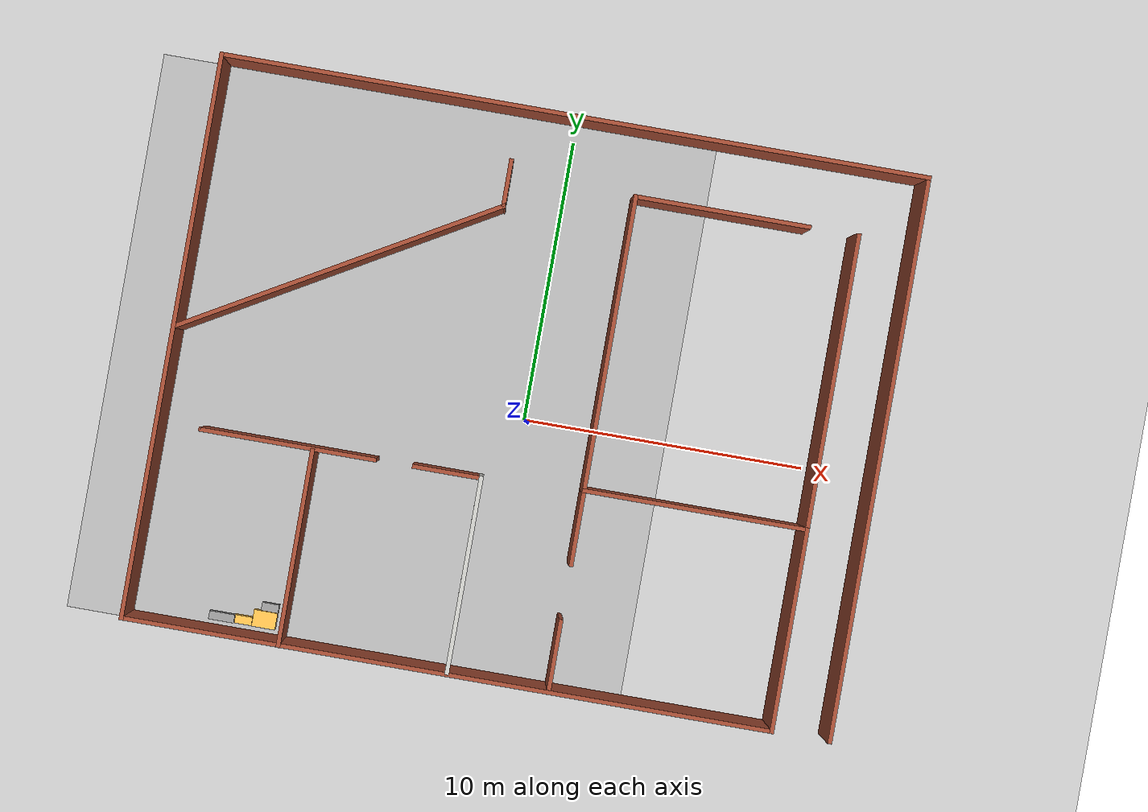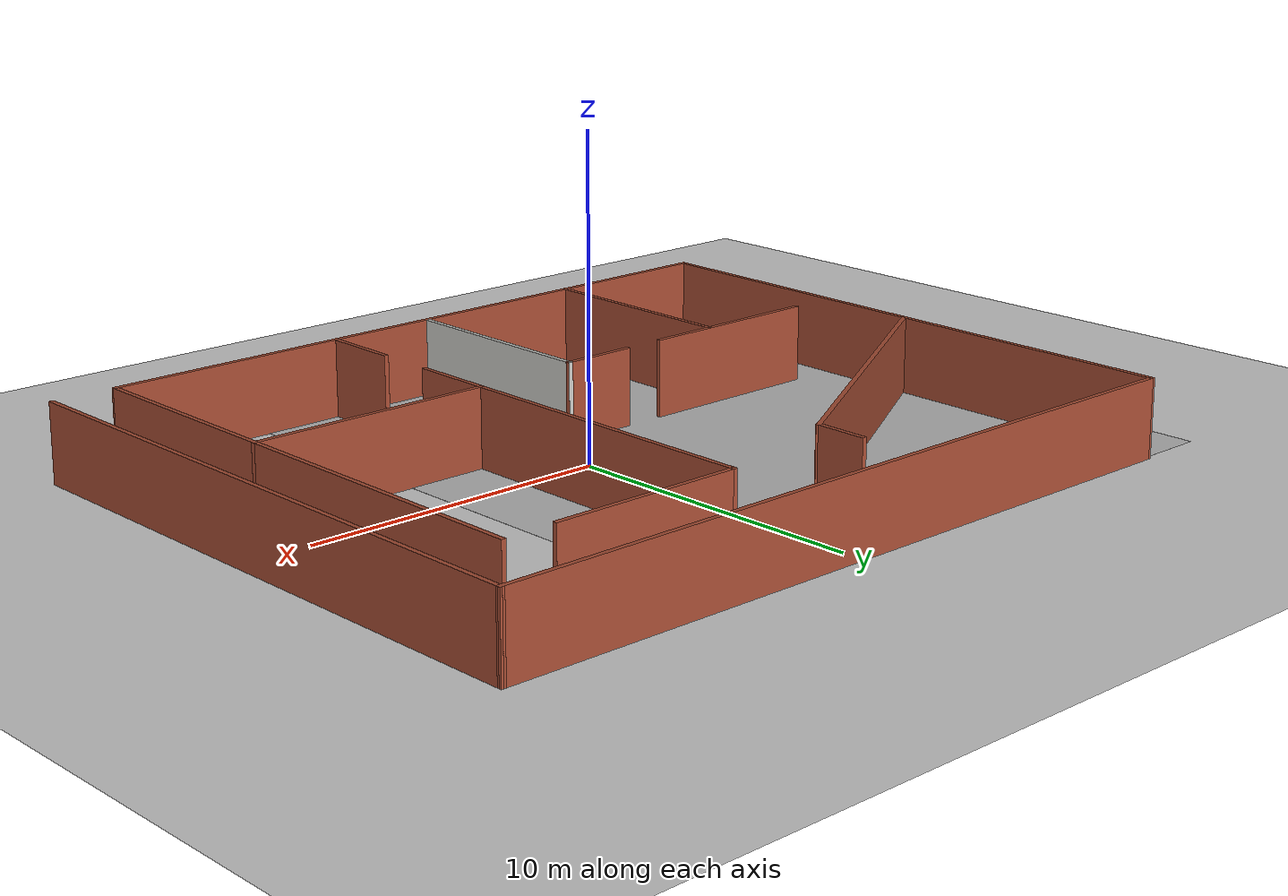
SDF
<sdf version="1.6">
 <world name="default">
  <model name="ground_plane">
   <static>1</static>
   <link name="link">
    <collision name="collision">
     <geometry><plane><normal>0 0 1</normal><size>100 100</size></plane></geometry>
     <surface><friction><ode><mu>100</mu><mu2>50</mu2></ode></friction></surface>
    </collision>
    <visual name="visual">
     <cast_shadows>0</cast_shadows>
     <geometry><plane><normal>0 0 1</normal><size>100 100</size></plane></geometry>
     <material>
      <script><uri>file://media/materials/scripts/gazebo.material</uri><name>Gazebo/Grey</name></script>
     </material>
    </visual>
   </link>
  </model>
  <model name="assignment_world">
   <pose>-0.160271 0.770481 0 0 -0 0</pose>
   <link name="Wall_11">
    <collision name="Wall_11_Collision">
     <geometry><box><size>7.25 0.15 2.5</size></box></geometry>
     <pose>0 0 1.25 0 -0 0</pose>
    </collision>
    <visual name="Wall_11_Visual">
     <pose>0 0 1.25 0 -0 0</pose>
     <geometry><box><size>7.25 0.15 2.5</size></box></geometry>
     <material>
      <script><uri>file://media/materials/scripts/gazebo.material</uri><name>Gazebo/Bricks</name></script>
      <ambient>1 1 1 1</ambient>
     </material>
     <meta><layer>0</layer></meta>
    </visual>
    <pose>10.422 -6.36383 0 0 -0 1.5708</pose>
   </link>
   <link name="Wall_12">
    <collision name="Wall_12_Collision">
     <geometry><box><size>8 0.15 2.5</size></box></geometry>
     <pose>0 0 1.25 0 -0 0</pose>
    </collision>
    <visual name="Wall_12_Visual">
     <pose>0 0 1.25 0 -0 0</pose>
     <geometry><box><size>8 0.15 2.5</size></box></geometry>
     <material>
      <script><uri>file://media/materials/scripts/gazebo.material</uri><name>Gazebo/Bricks</name></script>
      <ambient>1 1 1 1</ambient>
     </material>
     <meta><layer>0</layer></meta>
    </visual>
    <pose>6.49702 -2.81383 0 0 -0 3.14159</pose>
   </link>
   <link name="Wall_13">
    <collision name="Wall_13_Collision">
     <geometry><box><size>2.75 0.15 2.5</size></box></geometry>
     <pose>0 0 1.25 0 -0 0</pose>
    </collision>
    <visual name="Wall_13_Visual">
     <pose>0 0 1.25 0 -0 0</pose>
     <geometry><box><size>2.75 0.15 2.5</size></box></geometry>
     <material>
      <script><uri>file://media/materials/scripts/gazebo.material</uri><name>Gazebo/Bricks</name></script>
      <ambient>1 1 1 1</ambient>
     </material>
     <meta><layer>0</layer></meta>
    </visual>
    <pose>2.57202 -4.11383 0 0 -0 -1.5708</pose>
   </link>
   <link name="Wall_15">
    <collision name="Wall_15_Collision">
     <geometry><box><size>2.5 0.15 2.5</size></box></geometry>
     <pose>0 0 1.25 0 -0 0</pose>
    </collision>
    <visual name="Wall_15_Visual">
     <pose>0 0 1.25 0 -0 0</pose>
     <geometry><box><size>2.5 0.15 2.5</size></box></geometry>
     <material>
      <script><uri>file://media/materials/scripts/gazebo.material</uri><name>Gazebo/Bricks</name></script>
      <ambient>1 1 1 1</ambient>
     </material>
     <meta><layer>0</layer></meta>
    </visual>
    <pose>2.56055 -8.598 0 0 -0 -1.5708</pose>
   </link>
   <link name="Wall_17">
    <collision name="Wall_17_Collision">
     <geometry><box><size>10.5 0.15 2.5</size></box></geometry>
     <pose>0 0 1.25 0 -0 0</pose>
    </collision>
    <visual name="Wall_17_Visual">
     <pose>0 0 1.25 0 -0 0</pose>
     <geometry><box><size>10.5 0.15 2.5</size></box></geometry>
     <material>
      <script><uri>file://media/materials/scripts/gazebo.material</uri><name>Gazebo/Bricks</name></script>
      <ambient>1 1 1 1</ambient>
     </material>
     <meta><layer>0</layer></meta>
    </visual>
    <pose>10.422 2.36117 0 0 -0 1.5708</pose>
   </link>
   <link name="Wall_2">
    <collision name="Wall_2_Collision">
     <geometry><box><size>20.0001 0.15 2.5</size></box></geometry>
     <pose>0 0 1.25 0 -0 0</pose>
    </collision>
    <visual name="Wall_2_Visual">
     <pose>0 0 1.25 0 -0 0</pose>
     <geometry><box><size>20.0001 0.15 2.5</size></box></geometry>
     <material>
      <script><uri>file://media/materials/scripts/gazebo.material</uri><name>Gazebo/Bricks</name></script>
      <ambient>1 1 1 1</ambient>
     </material>
     <meta><layer>0</layer></meta>
    </visual>
    <pose>-12.4452 -0.009056 0 0 -0 -1.57314</pose>
   </link>
   <link name="Wall_24">
    <collision name="Wall_24_Collision">
     <geometry><box><size>10.5 0.15 2.5</size></box></geometry>
     <pose>0 0 1.25 0 -0 0</pose>
    </collision>
    <visual name="Wall_24_Visual">
     <pose>0 0 1.25 0 -0 0</pose>
     <geometry><box><size>10.5 0.15 2.5</size></box></geometry>
     <material>
      <script><uri>file://media/materials/scripts/gazebo.material</uri><name>Gazebo/Bricks</name></script>
      <ambient>1 1 1 1</ambient>
     </material>
     <meta><layer>0</layer></meta>
    </visual>
    <pose>2.57202 2.36117 0 0 -0 -1.5708</pose>
   </link>
   <link name="Wall_26">
    <collision name="Wall_26_Collision">
     <geometry><box><size>6.25 0.15 2.5</size></box></geometry>
     <pose>0 0 1.25 0 -0 0</pose>
    </collision>
    <visual name="Wall_26_Visual">
     <pose>0 0 1.25 0 -0 0</pose>
     <geometry><box><size>6.25 0.15 2.5</size></box></geometry>
     <material>
      <script><uri>file://media/materials/scripts/gazebo.material</uri><name>Gazebo/Bricks</name></script>
      <ambient>1 1 1 1</ambient>
     </material>
     <meta><layer>0</layer></meta>
    </visual>
    <pose>5.62202 7.53617 0 0 -0 0</pose>
   </link>
   <link name="Wall_33">
    <collision name="Wall_33_Collision">
     <geometry><box><size>12.25 0.15 2.5</size></box></geometry>
     <pose>0 0 1.25 0 -0 0</pose>
    </collision>
    <visual name="Wall_33_Visual">
     <pose>0 0 1.25 0 -0 0</pose>
     <geometry><box><size>12.25 0.15 2.5</size></box></geometry>
     <material>
      <script><uri>file://media/materials/scripts/gazebo.material</uri><name>Gazebo/Bricks</name></script>
      <ambient>1 1 1 1</ambient>
     </material>
     <meta><layer>0</layer></meta>
    </visual>
    <pose>-7.13474 3.38922 0 0 -0 0.523599</pose>
   </link>
   <link name="Wall_34">
    <collision name="Wall_34_Collision">
     <geometry><box><size>1.75 0.15 2.5</size></box></geometry>
     <pose>0 0 1.25 0 -0 0</pose>
    </collision>
    <visual name="Wall_34_Visual">
     <pose>0 0 1.25 0 -0 0</pose>
     <geometry><box><size>1.75 0.15 2.5</size></box></geometry>
     <material>
      <script><uri>file://media/materials/scripts/gazebo.material</uri><name>Gazebo/Bricks</name></script>
      <ambient>1 1 1 1</ambient>
     </material>
     <meta><layer>0</layer></meta>
    </visual>
    <pose>-1.89529 7.21422 0 0 -0 1.5708</pose>
   </link>
   <link name="Wall_4">
    <collision name="Wall_4_Collision">
     <geometry><box><size>25.0202 0.15 2.5</size></box></geometry>
     <pose>0 0 1.25 0 -0 0</pose>
    </collision>
    <visual name="Wall_4_Visual">
     <pose>0 0 1.25 0 -0 0</pose>
     <geometry><box><size>25.0202 0.15 2.5</size></box></geometry>
     <material>
      <script><uri>file://media/materials/scripts/gazebo.material</uri><name>Gazebo/Bricks</name></script>
      <ambient>1 1 1 1</ambient>
     </material>
     <meta><layer>0</layer></meta>
    </visual>
    <pose>0.033433 9.92606 0 0 -0 0.000813</pose>
   </link>
   <link name="Wall_42">
    <collision name="Wall_42_Collision">
     <geometry><box><size>7 0.15 2.5</size></box></geometry>
     <pose>0 0 1.25 0 -0 0</pose>
    </collision>
    <visual name="Wall_42_Visual">
     <pose>0 0 1.25 0 -0 0</pose>
     <geometry><box><size>7 0.15 2.5</size></box></geometry>
     <material>
      <script><uri>file://media/materials/scripts/gazebo.material</uri><name>Gazebo/CeilingTiled</name></script>
      <ambient>1 1 1 1</ambient>
     </material>
     <meta><layer>0</layer></meta>
    </visual>
    <pose>-1.02106 -6.43398 0 0 -0 1.5708</pose>
   </link>
   <link name="Wall_43">
    <collision name="Wall_43_Collision">
     <geometry><box><size>2.5 0.15 2.5</size></box></geometry>
     <pose>0 0 1.25 0 -0 0</pose>
    </collision>
    <visual name="Wall_43_Visual">
     <pose>0 0 1.25 0 -0 0</pose>
     <geometry><box><size>2.5 0.15 2.5</size></box></geometry>
     <material>
      <script><uri>file://media/materials/scripts/gazebo.material</uri><name>Gazebo/Bricks</name></script>
      <ambient>1 1 1 1</ambient>
     </material>
     <meta><layer>0</layer></meta>
    </visual>
    <pose>-2.19606 -3.00899 0 0 -0 3.14159</pose>
   </link>
   <link name="Wall_45">
    <collision name="Wall_45_Collision">
     <geometry><box><size>7 0.15 2.5</size></box></geometry>
     <pose>0 0 1.25 0 -0 0</pose>
    </collision>
    <visual name="Wall_45_Visual">
     <pose>0 0 1.25 0 -0 0</pose>
     <geometry><box><size>7 0.15 2.5</size></box></geometry>
     <material>
      <script><uri>file://media/materials/scripts/gazebo.material</uri><name>Gazebo/Bricks</name></script>
      <ambient>1 1 1 1</ambient>
     </material>
     <meta><layer>0</layer></meta>
    </visual>
    <pose>-6.94735 -6.51123 0 0 -0 1.5708</pose>
   </link>
   <link name="Wall_47">
    <collision name="Wall_47_Collision">
     <geometry><box><size>6.25 0.15 2.5</size></box></geometry>
     <pose>0 0 1.25 0 -0 0</pose>
    </collision>
    <visual name="Wall_47_Visual">
     <pose>0 0 1.25 0 -0 0</pose>
     <geometry><box><size>6.25 0.15 2.5</size></box></geometry>
     <material>
      <script><uri>file://media/materials/scripts/gazebo.material</uri><name>Gazebo/Bricks</name></script>
      <ambient>1 1 1 1</ambient>
     </material>
     <meta><layer>0</layer></meta>
    </visual>
    <pose>-7.83368 -3.02257 0 0 -0 3.14159</pose>
   </link>
   <link name="Wall_48">
    <collision name="Wall_48_Collision">
     <geometry><box><size>0.15 0.15 2.5</size></box></geometry>
     <pose>0 0 1.25 0 -0 0</pose>
    </collision>
    <visual name="Wall_48_Visual">
     <pose>0 0 1.25 0 -0 0</pose>
     <geometry><box><size>0.15 0.15 2.5</size></box></geometry>
     <material>
      <script><uri>file://media/materials/scripts/gazebo.material</uri><name>Gazebo/Grey</name></script>
      <ambient>1 1 1 1</ambient>
     </material>
     <meta><layer>0</layer></meta>
    </visual>
    <pose>-10.8837 -3.02257 0 0 -0 0</pose>
   </link>
   <link name="Wall_6">
    <collision name="Wall_6_Collision">
     <geometry><box><size>20 0.15 2.5</size></box></geometry>
     <pose>0 0 1.25 0 -0 0</pose>
    </collision>
    <visual name="Wall_6_Visual">
     <pose>0 0 1.25 0 -0 0</pose>
     <geometry><box><size>20 0.15 2.5</size></box></geometry>
     <material>
      <script><uri>file://media/materials/scripts/gazebo.material</uri><name>Gazebo/Bricks</name></script>
      <ambient>1 1 1 1</ambient>
     </material>
     <meta><layer>0</layer></meta>
    </visual>
    <pose>12.4685 0.011172 0 0 -0 -1.5708</pose>
   </link>
   <link name="Wall_8">
    <collision name="Wall_8_Collision">
     <geometry><box><size>23.0202 0.15 2.5</size></box></geometry>
     <pose>0 0 1.25 0 -0 0</pose>
    </collision>
    <visual name="Wall_8_Visual">
     <pose>0 0 1.25 0 -0 0</pose>
     <geometry><box><size>23.0202 0.15 2.5</size></box></geometry>
     <material>
      <script><uri>file://media/materials/scripts/gazebo.material</uri><name>Gazebo/Bricks</name></script>
      <ambient>1 1 1 1</ambient>
     </material>
     <meta><layer>0</layer></meta>
    </visual>
    <pose>-1.01309 -9.92394 0 0 -0 0.000884</pose>
   </link>
   <static>1</static>
  </model>
  <model name="Floor_room">
   <link name="main">
    <pose>0 0 0.01 0 -0 0</pose>
    <collision name="main_Collision"><geometry><box><size>20 20 0.001</size></box></geometry></collision>
    <visual name="main_Visual">
     <geometry><box><size>20 20 0.001</size></box></geometry>
     <material>
      <script>
       <uri>model://Floor_room/materials/scripts</uri>
       <uri>model://Floor_room/materials/textures</uri>
       <name>floor_room</name>
      </script>
     </material>
    </visual>
   </link>
   <static>1</static>
   <pose>-4.93717 0.622613 -0 0 -0 0</pose>
  </model>
  <model name="Box_33x15">
   <link name="Wall">
    <pose>0 0 0.1985 0 -0 0</pose>
    <inertial>
     <mass>5</mass>
     <inertia><ixx>0.2157</ixx><iyy>0.3597</iyy><izz>0.444</izz><ixy>0</ixy><ixz>0</ixz><iyz>0</iyz></inertia>
    </inertial>
    <collision name="Wall_Collision"><geometry><box><size>0.84 0.6 0.397</size></box></geometry></collision>
    <visual name="Wall_Visual">
     <geometry><box><size>0.84 0.6 0.397</size></box></geometry>
     <material>
      <script><uri>file://media/materials/scripts/gazebo.material</uri><name>Gazebo/Grey</name></script>
      <ambient>1 0.764706 0.305882 1</ambient>
     </material>
    </visual>
   </link>
   <static>1</static>
   <pose>-7.88542 -8.59674 0 0 -0 0</pose>
  </model>
  <model name="Box_24x15W">
   <link name="Wall">
    <pose>0 0 0.1985 0 -0 0</pose>
    <inertial>
     <mass>5</mass>
     <inertia><ixx>0.1022</ixx><iyy>0.2197</iyy><izz>0.1905</izz><ixy>0</ixy><ixz>0</ixz><iyz>0</iyz></inertia>
    </inertial>
    <collision name="Wall_Collision"><geometry><box><size>0.608 0.296 0.397</size></box></geometry></collision>
    <visual name="Wall_Visual">
     <geometry><box><size>0.608 0.296 0.397</size></box></geometry>
     <material>
      <script><uri>file://media/materials/scripts/gazebo.material</uri><name>Gazebo/Grey</name></script>
      <ambient>1 1 1 1</ambient>
     </material>
    </visual>
   </link>
   <static>1</static>
   <pose>-7.76361 -8.14132 0 0 -0 0</pose>
  </model>
  <model name="Box_24x15M">
   <link name="Wall">
    <pose>0 0 0.1985 0 -0 0</pose>
    <inertial>
     <mass>5</mass>
     <inertia><ixx>0.1022</ixx><iyy>0.2197</iyy><izz>0.1905</izz><ixy>0</ixy><ixz>0</ixz><iyz>0</iyz></inertia>
    </inertial>
    <collision name="Wall_Collision"><geometry><box><size>0.608 0.296 0.397</size></box></geometry></collision>
    <visual name="Wall_Visual">
     <geometry><box><size>0.608 0.296 0.397</size></box></geometry>
     <material>
      <script><uri>file://media/materials/scripts/gazebo.material</uri><name>Gazebo/Grey</name></script>
      <ambient>1 0.764706 0.305882 1</ambient>
     </material>
    </visual>
   </link>
   <static>1</static>
   <pose>-8.62222 -8.73787 0 0 -0 0</pose>
  </model>
  <model name="Box_36x15W">
   <link name="Wall">
    <pose>0 0 0.1985 0 -0 0</pose>
    <inertial>
     <mass>5</mass>
     <inertia><ixx>0.1022</ixx><iyy>0.4107</iyy><izz>0.3815</izz><ixy>0</ixy><ixz>0</ixz><iyz>0</iyz></inertia>
    </inertial>
    <collision name="Wall_Collision"><geometry><box><size>0.91 0.296 0.397</size></box></geometry></collision>
    <visual name="Wall_Visual">
     <geometry><box><size>0.91 0.296 0.397</size></box></geometry>
     <material>
      <script><uri>file://media/materials/scripts/gazebo.material</uri><name>Gazebo/Grey</name></script>
      <ambient>1 1 1 1</ambient>
     </material>
    </visual>
   </link>
   <static>1</static>
   <pose>-9.40603 -8.75664 0 0 -0 0</pose>
  </model>
 </world>
</sdf>
